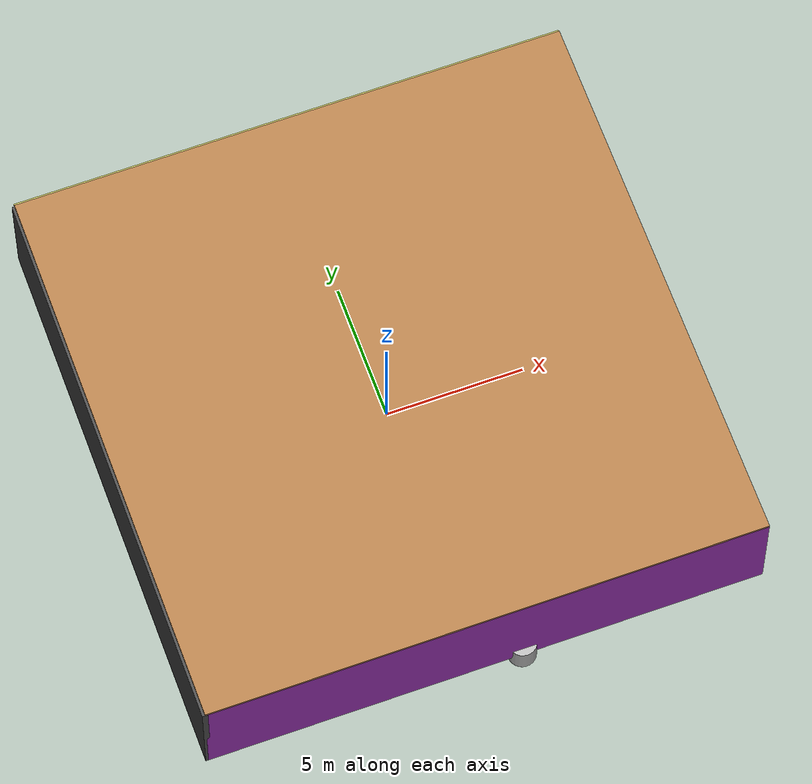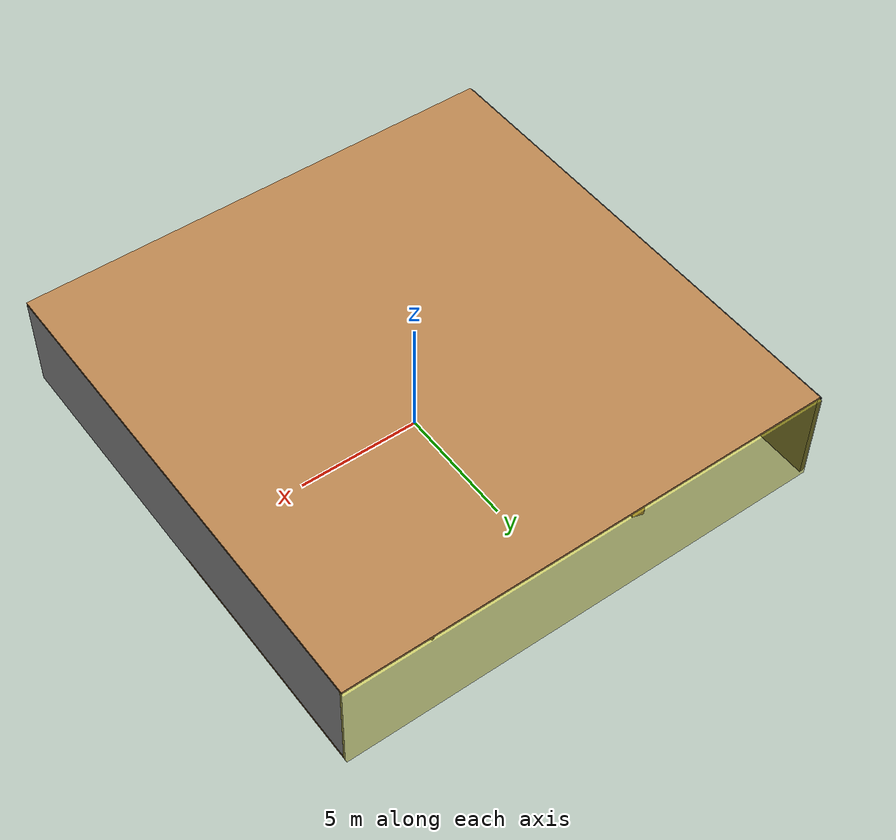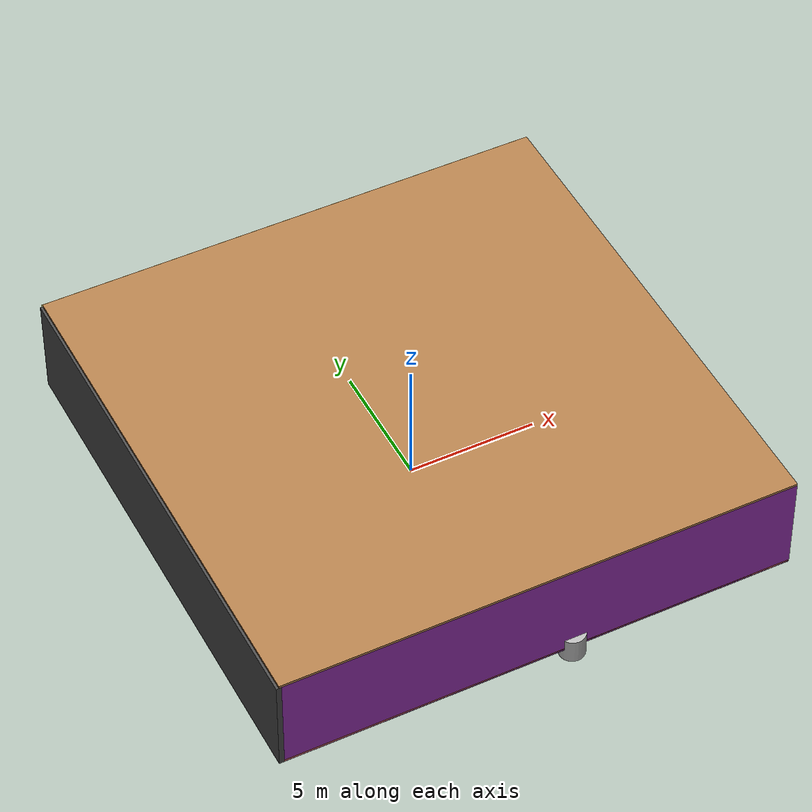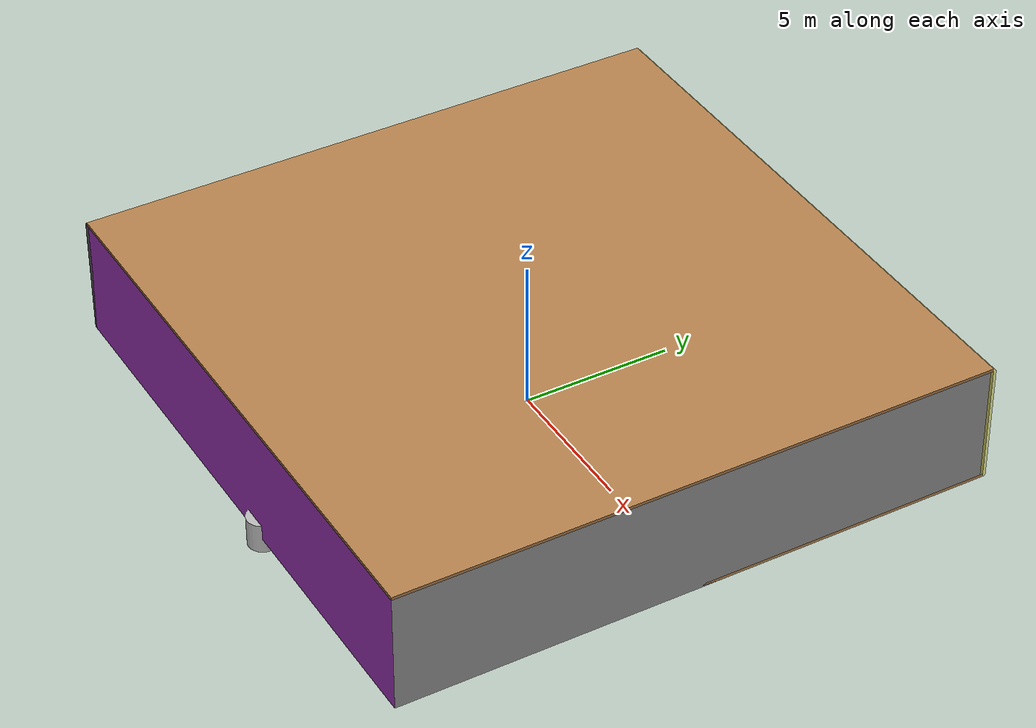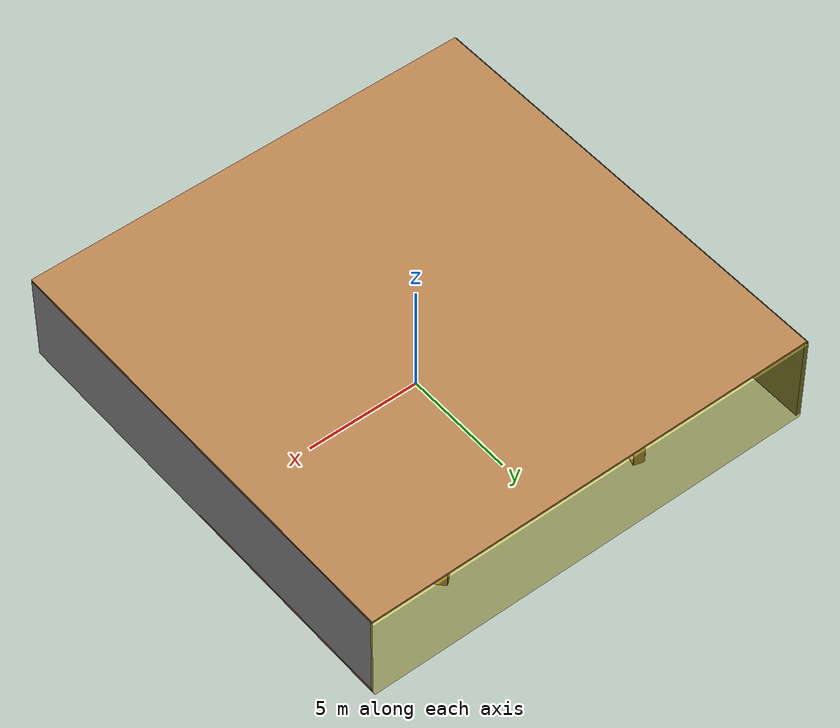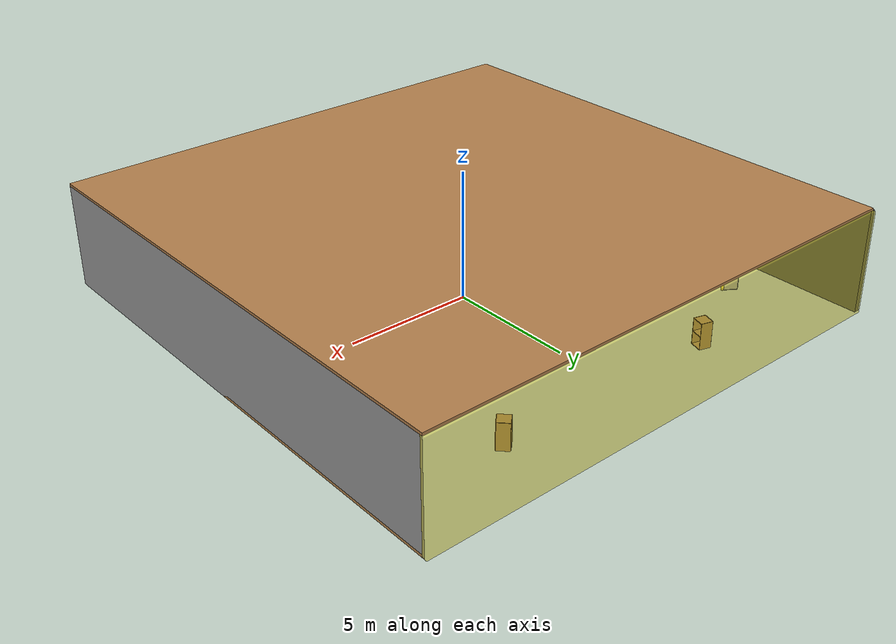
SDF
<sdf version="1.4">
 <world name="default">
  <physics type="ode">
   <max_step_size>0.001</max_step_size>
   <real_time_factor>1</real_time_factor>
   <real_time_update_rate>1000</real_time_update_rate>
   <gravity>0 0 -9.8</gravity>
  </physics>
  <scene><ambient>0.4 0.4 0.4 1</ambient><background>0.7 0.7 0.7 1</background><shadows>1</shadows></scene>
  <model name="Surrounding">
   <static>1</static>
   <link name="Ceiling">
    <collision name="Ceiling_Collision"><geometry><box><size>20 20 0.1</size></box></geometry></collision>
    <visual name="Ceiling_Visual">
     <geometry><box><size>20 20 0.1</size></box></geometry>
     <material>
      <script><uri>file://media/materials/scripts/gazebo.material</uri><name>Gazebo/WoodPallet</name></script>
     </material>
    </visual>
    <pose>0 0 4.05 0 0 0</pose>
   </link>
   <link name="Wall_South">
    <collision name="Wall_South_Collision">
     <geometry><box><size>20 0 4</size></box></geometry>
     <pose>0 0 2 0 -0 0</pose>
    </collision>
    <visual name="Wall_South_Visual">
     <pose>0 0 2 0 -0 0</pose>
     <geometry><box><size>20 0 4</size></box></geometry>
     <material>
      <script><uri>file://media/materials/scripts/gazebo.material</uri><name>Gazebo/PurpleGlow</name></script>
     </material>
    </visual>
    <velocity_decay><linear>0</linear><angular>0</angular></velocity_decay>
    <pose>0 -10 0 0 -0 0</pose>
   </link>
   <link name="Wall_East">
    <collision name="Wall_21_Collision">
     <geometry><box><size>20 0 4</size></box></geometry>
     <pose>0 0 2 0 -0 0</pose>
    </collision>
    <visual name="Wall_21_Visual">
     <pose>0 0 2 0 -0 0</pose>
     <geometry><box><size>20 0 4</size></box></geometry>
     <material>
      <script><uri>file://media/materials/scripts/gazebo.material</uri><name>Gazebo/Grey</name></script>
     </material>
    </visual>
    <velocity_decay><linear>0</linear><angular>0</angular></velocity_decay>
    <pose>10 0 0 0 -0 1.5708</pose>
   </link>
   <link name="Wall_North">
    <collision name="Wall_22_Collision">
     <geometry><box><size>20 0.2 4</size></box></geometry>
     <pose>0 0 2 0 -0 0</pose>
    </collision>
    <visual name="Wall_22_Visual">
     <pose>0 0 2 0 -0 0</pose>
     <geometry><box><size>20 0.2 4</size></box></geometry>
     <material>
      <script>
       <uri>file://media/materials/scripts/gazebo.material</uri>
       <name>Gazebo/YellowTransparent</name>
      </script>
     </material>
    </visual>
    <velocity_decay><linear>0</linear><angular>0</angular></velocity_decay>
    <pose>0 10 0 0 -0 0</pose>
   </link>
   <link name="Wall_West">
    <collision name="Wall_23_Collision">
     <geometry><box><size>20 0.2 4</size></box></geometry>
     <pose>0 0 2 0 -0 0</pose>
    </collision>
    <visual name="Wall_23_Visual">
     <pose>0 0 2 0 -0 0</pose>
     <geometry><box><size>20 0.2 4</size></box></geometry>
     <material>
      <script><uri>file://media/materials/scripts/gazebo.material</uri><name>Gazebo/DarkGrey</name></script>
     </material>
    </visual>
    <velocity_decay><linear>0</linear><angular>0</angular></velocity_decay>
    <pose>-10 0 0 0 0 -1.5708</pose>
   </link>
   <link name="Ground_link">
    <collision name="collision">
     <pose>0 0 .05 0 -0 0</pose>
     <geometry><box><size>20 20 0.1</size></box></geometry>
    </collision>
    <visual name="visual">
     <pose>0 0 .05 0 -0 0</pose>
     <geometry><box><size>20 20 0.1</size></box></geometry>
     <material>
      <script>
       <uri>file://media/materials/scripts/gazebo.material</uri>
       <name>Gazebo/OrangeTransparent</name>
      </script>
     </material>
    </visual>
   </link>
   <static>1</static>
  </model>
  <spherical_coordinates>
   <surface_model>EARTH_WGS84</surface_model>
   <latitude_deg>0</latitude_deg>
   <longitude_deg>0</longitude_deg>
   <elevation>0</elevation>
   <heading_deg>0</heading_deg>
  </spherical_coordinates>
  <light name="lightball_0" type="diffuse">
   <diffuse>0.8 0.8 0.8 1</diffuse>
   <specular>0.2 0.2 0.2 1</specular>
   <attenuation>
    <range>100</range>
    <constant>0.7</constant>
    <linear>0.01</linear>
    <quadratic>0.001</quadratic>
   </attenuation>
   <direction>-0.5 0.1 -0.9</direction>
   <pose>-3.22198082562 0.807625250463 2.12626073691 0 0 0</pose>
  </light>
  <light name="lightball_1" type="diffuse">
   <diffuse>0.8 0.8 0.8 1</diffuse>
   <specular>0.2 0.2 0.2 1</specular>
   <attenuation>
    <range>100</range>
    <constant>0.7</constant>
    <linear>0.01</linear>
    <quadratic>0.001</quadratic>
   </attenuation>
   <direction>-0.5 0.1 -0.9</direction>
   <pose>5.02255194497 5.14310503421 3.42318795772 0 0 0</pose>
  </light>
  <light name="lightball_2" type="diffuse">
   <diffuse>0.8 0.8 0.8 1</diffuse>
   <specular>0.2 0.2 0.2 1</specular>
   <attenuation>
    <range>100</range>
    <constant>0.7</constant>
    <linear>0.01</linear>
    <quadratic>0.001</quadratic>
   </attenuation>
   <direction>-0.5 0.1 -0.9</direction>
   <pose>-0.851359678742 -3.73747975179 2.17158106572 0 0 0</pose>
  </light>
  <light name="lightball_3" type="diffuse">
   <diffuse>0.8 0.8 0.8 1</diffuse>
   <specular>0.2 0.2 0.2 1</specular>
   <attenuation>
    <range>100</range>
    <constant>0.7</constant>
    <linear>0.01</linear>
    <quadratic>0.001</quadratic>
   </attenuation>
   <direction>-0.5 0.1 -0.9</direction>
   <pose>0.784505064724 -2.55046524256 0.547795241639 0 0 0</pose>
  </light>
  <include>
   <uri>model://construction_cone</uri>
   <pose>-7.43886539027 -6.85603632948 0 0 0 0.982295248092</pose>
  </include>
  <include>
   <uri>model://robocup_3Dsim_goal</uri>
   <pose>-8.26541493088 -4.84640472069 0 0 0 2.11806777085</pose>
  </include>
  <include>
   <uri>model://robocup_3Dsim_goal</uri>
   <pose>-8.23157921826 5.01821379461 0 0 0 2.49671483793</pose>
  </include>
  <include><uri>model://cabinet</uri><pose>-4.96185141378 4.06274007876 0 0 0 0.691013227391</pose></include>
  <include><uri>model://cabinet</uri><pose>-3.9652235089 7.84454784081 0 0 0 2.85328947395</pose></include>
  <include>
   <uri>model://textured_shapes</uri>
   <pose>1.39210843955 -8.26693049334 0 0 0 3.10990477028</pose>
  </include>
  <include><uri>model://table</uri><pose>1.56329608616 1.3792027917 0 0 0 0.609968178134</pose></include>
  <include><uri>model://cabinet</uri><pose>3.86621262316 -8.05143731778 0 0 0 2.96298988687</pose></include>
  <include><uri>model://cabinet</uri><pose>5.02831774472 7.6754309098 0 0 0 0.753553845871</pose></include>
  <include><uri>model://table</uri><pose>7.14222387613 -1.67312962148 0 0 0 0.569378472254</pose></include>
 </world>
</sdf>

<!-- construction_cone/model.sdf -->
<sdf version="1.5">
  <model name="Construction Cone">
    <link name="link">
      <collision name="collision">
        <geometry>
          <mesh>
            <scale>10 10 10</scale>
            <uri>file://isr-testbed/construction_cone/meshes/construction_cone.dae</uri>
          </mesh>
        </geometry>
      </collision>
      <visual name="visual">
        <geometry>
          <mesh>
            <scale>10 10 10</scale>
            <uri>file://isr-testbed/construction_cone/meshes/construction_cone.dae</uri>
          </mesh>
        </geometry>
      </visual>
    </link>
  </model>
</sdf>

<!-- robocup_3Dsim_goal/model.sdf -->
<sdf version="1.5">
  <model name="robocup_3d_goal">
    <static>true</static>
    <link name="left_post">
      <pose>0 1.05 0.45 0 0 0</pose>
      <collision name="collision">
        <geometry>
          <cylinder>
            <radius>0.05</radius>
            <length>0.9</length>
          </cylinder>
        </geometry>
      </collision>
      <visual name="visual">
        <geometry>
          <cylinder>
            <radius>0.05</radius>
            <length>0.9</length>
          </cylinder>
        </geometry>
        <material>
          <script>
            <uri>file://media/materials/scripts/gazebo.material</uri>
            <name>Gazebo/ZincYellow</name>
          </script>
        </material>
      </visual>
    </link>
    <link name="left_support_horiz_lower">
      <pose>0.30 1.05 0.01 0 0 0</pose>
      <collision name="collision">
        <geometry>
          <box>
            <size>0.50 0.02 0.02</size>
          </box>
        </geometry>
      </collision>
      <visual name="visual">
        <geometry>
          <box>
            <size>0.50 0.02 0.02</size>
          </box>
        </geometry>
        <material>
          <script>
            <uri>file://media/materials/scripts/gazebo.material</uri>
            <name>Gazebo/White</name>
          </script>
        </material>
      </visual>
    </link>
    <link name="left_support_horiz_upper">
      <pose>0.30 1.05 0.79 0 0 0</pose>
      <collision name="collision">
        <geometry>
          <box>
            <size>0.50 0.02 0.02</size>
          </box>
        </geometry>
      </collision>
      <visual name="visual">
        <geometry>
          <box>
            <size>0.50 0.02 0.02</size>
          </box>
        </geometry>
        <material>
          <script>
            <uri>file://media/materials/scripts/gazebo.material</uri>
            <name>Gazebo/White</name>
          </script>
        </material>
      </visual>
    </link>
    <link name="left_support_vertical">
      <pose>0.56 1.05 0.4 0 1.5708 0</pose>
      <collision name="collision">
        <geometry>
          <box>
            <size>0.80 0.02 0.02</size>
          </box>
        </geometry>
      </collision>
      <visual name="visual">
        <geometry>
          <box>
            <size>0.80 0.02 0.02</size>
          </box>
        </geometry>
        <material>
          <script>
            <uri>file://media/materials/scripts/gazebo.material</uri>
            <name>Gazebo/White</name>
          </script>
        </material>
      </visual>
    </link>
    <link name="right_support_horiz_lower">
      <pose>0.30 -1.05 0.01 0 0 0</pose>
      <collision name="collision">
        <geometry>
          <box>
            <size>0.50 0.02 0.02</size>
          </box>
        </geometry>
      </collision>
      <visual name="visual">
        <geometry>
          <box>
            <size>0.50 0.02 0.02</size>
          </box>
        </geometry>
        <material>
          <script>
            <uri>file://media/materials/scripts/gazebo.material</uri>
            <name>Gazebo/White</name>
          </script>
        </material>
      </visual>
    </link>
    <link name="right_support_horiz_upper">
      <pose>0.30 -1.05 0.79 0 0 0</pose>
      <collision name="collision">
        <geometry>
          <box>
            <size>0.50 0.02 0.02</size>
          </box>
        </geometry>
      </collision>
      <visual name="visual">
        <geometry>
          <box>
            <size>0.50 0.02 0.02</size>
          </box>
        </geometry>
        <material>
          <script>
            <uri>file://media/materials/scripts/gazebo.material</uri>
            <name>Gazebo/White</name>
          </script>
        </material>
      </visual>
    </link>
    <link name="right_support_vertical">
      <pose>0.56 -1.05 0.4 0 1.5708 0</pose>
      <collision name="collision">
        <geometry>
          <box>
            <size>0.80 0.02 0.02</size>
          </box>
        </geometry>
      </collision>
      <visual name="visual">
        <geometry>
          <box>
            <size>0.80 0.02 0.02</size>
          </box>
        </geometry>
        <material>
          <script>
            <uri>file://media/materials/scripts/gazebo.material</uri>
            <name>Gazebo/White</name>
          </script>
        </material>
      </visual>
    </link>
    <link name="center_support_horiz_lower">
      <pose>0.56 0 0.01 0 1.5708 0</pose>
      <collision name="collision">
        <geometry>
          <box>
            <size>0.02 2.08 0.02</size>
          </box>
        </geometry>
      </collision>
      <visual name="visual">
        <geometry>
          <box>
            <size>0.02 2.08 0.02</size>
          </box>
        </geometry>
        <material>
          <script>
            <uri>file://media/materials/scripts/gazebo.material</uri>
            <name>Gazebo/White</name>
          </script>
        </material>
      </visual>
    </link>
    <link name="center_support_horiz_upper">
      <pose>0.56 0 0.79 0 1.5708 0</pose>
      <collision name="collision">
        <geometry>
          <box>
            <size>0.02 2.08 0.02</size>
          </box>
        </geometry>
      </collision>
      <visual name="visual">
        <geometry>
          <box>
            <size>0.02 2.08 0.02</size>
          </box>
        </geometry>
        <material>
          <script>
            <uri>file://media/materials/scripts/gazebo.material</uri>
            <name>Gazebo/White</name>
          </script>
        </material>
      </visual>
    </link>
    <link name="right_post">
      <pose>0 -1.05 0.45 0 0 0</pose>
      <collision name="collision">
        <geometry>
          <cylinder>
            <radius>0.05</radius>
            <length>0.9</length>
          </cylinder>
        </geometry>
      </collision>
      <visual name="visual">
        <geometry>
          <cylinder>
            <radius>0.05</radius>
            <length>0.9</length>
          </cylinder>
        </geometry>
        <material>
          <script>
            <uri>file://media/materials/scripts/gazebo.material</uri>
            <name>Gazebo/ZincYellow</name>
          </script>
        </material>
      </visual>
    </link>
    <link name="crossbar">
      <pose>0 0 0.85 1.57 1.57 0</pose>
      <collision name="collision">
        <geometry>
          <cylinder>
            <radius>0.05</radius>
            <length>2.0</length>
          </cylinder>
        </geometry>
      </collision>
      <visual name="visual">
        <geometry>
          <cylinder>
            <radius>0.05</radius>
            <length>2.0</length>
          </cylinder>
        </geometry>
        <material>
          <script>
            <uri>file://media/materials/scripts/gazebo.material</uri>
            <name>Gazebo/ZincYellow</name>
          </script>
        </material>
      </visual>
    </link>
    <link name="center_net">
      <pose>0.56 0 0.40 0 0 0</pose>
      <collision name="collision">
        <geometry>
          <box>
            <size>0.01 2.1 0.80</size>
          </box>
        </geometry>
      </collision>
      <visual name="visual">
        <geometry>
          <box>
            <size>0.01 2.1 0.80</size>
          </box>
        </geometry>
        <material>
          <script>
            <uri>model://../model_source/models/robocup09_spl_field/materials/scripts/</uri>
            <uri>model://../model_source/models/robocup09_spl_field/materials/textures/</uri>
            <name>RoboCup/Net</name>
          </script>
        </material>
      </visual>
    </link>
    <link name="left_net">
      <pose>0.30 1.05 0.40 0 0 0</pose>
      <collision name="collision">
        <geometry>
          <box>
            <size>0.50 0.01 0.76</size>
          </box>
        </geometry>
      </collision>
      <visual name="visual">
        <geometry>
          <box>
            <size>0.50 0.01 0.76</size>
          </box>
        </geometry>
        <material>
          <script>
            <uri>model://../model_source/models/robocup09_spl_field/materials/scripts/</uri>
            <uri>model://../model_source/models/robocup09_spl_field/materials/textures/</uri>
            <name>RoboCup/Net</name>
          </script>
        </material>
      </visual>
    </link>
    <link name="right_net">
      <pose>0.30 -1.05 0.40 0 0 0</pose>
      <collision name="collision">
        <geometry>
          <box>
            <size>0.50 0.01 0.76</size>
          </box>
        </geometry>
      </collision>
      <visual name="visual">
        <geometry>
          <box>
            <size>0.50 0.01 0.76</size>
          </box>
        </geometry>
        <material>
          <script>
            <uri>model://../model_source/models/robocup09_spl_field/materials/scripts/</uri>
            <uri>model://../model_source/models/robocup09_spl_field/materials/textures/</uri>
            <name>RoboCup/Net</name>
          </script>
        </material>
      </visual>
    </link>
  </model>
</sdf>

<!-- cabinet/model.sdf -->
<sdf version="1.5">
  <model name="cabinet">
    <static>true</static>
    <link name="cabinet_bottom_plate">
      <inertial>
        <pose>0 0 -1 0 0 0</pose>
        <inertia>
          <ixx>2.050000</ixx>
          <ixy>0</ixy>
          <ixz>0</ixz>
          <iyy>2.050000</iyy>
          <iyz>0</iyz>
          <izz>2.050000</izz>
        </inertia>
        <mass>25.000000</mass>
      </inertial>
      <collision name="cabinet_bottom_plate_geom">
        <pose>0 0 0.010000 0 0 0</pose>
        <geometry>
          <box>
            <size>0.450000 0.450000 0.020000</size>
          </box>
        </geometry>
      </collision>
      <visual name="cabinet_bottom_plate_geom_visual">
        <pose>0 0 0.010000 0 0 0</pose>
        <geometry>
          <box>
            <size>0.450000 0.450000 0.020000</size>
          </box>
        </geometry>
        <material>
          <script>
            <uri>model://media/materials/scripts/gazebo.material</uri>
            <name>Gazebo/Wood</name>
          </script>
        </material>
      </visual>
      <collision name="cabinet_bottom_plate_geom_cabinet_back_plate">
        <pose>0.235000 0 0.510000 0 0 0</pose>
        <geometry>
          <box>
            <size>0.020000 0.450000 1.020000</size>
          </box>
        </geometry>
      </collision>
      <visual name="cabinet_bottom_plate_geom_cabinet_back_plate_visual">
        <pose>0.235000 0 0.510000 0 0 0</pose>
        <geometry>
          <box>
            <size>0.020000 0.450000 1.020000</size>
          </box>
        </geometry>
        <material>
          <script>
            <uri>model://media/materials/scripts/gazebo.material</uri>
            <name>Gazebo/Wood</name>
          </script>
        </material>
      </visual>
      <collision name="cabinet_bottom_plate_geom_cabinet_left_plate">
        <pose>0 0.235000 0.510000 0 0 0</pose>
        <geometry>
          <box>
            <size>0.450000 0.020000 1.020000</size>
          </box>
        </geometry>
      </collision>
      <visual name="cabinet_bottom_plate_geom_cabinet_left_plate_visual">
        <pose>0 0.235000 0.510000 0 0 0</pose>
        <geometry>
          <box>
            <size>0.450000 0.020000 1.020000</size>
          </box>
        </geometry>
        <material>
          <script>
            <uri>model://media/materials/scripts/gazebo.material</uri>
            <name>Gazebo/Wood</name>
          </script>
        </material>
      </visual>
      <collision name="cabinet_bottom_plate_geom_cabinet_middle_plate">
        <pose>0 0 0.510000 0 0 0</pose>
        <geometry>
          <box>
            <size>0.450000 0.450000 0.020000</size>
          </box>
        </geometry>
      </collision>
      <visual name="cabinet_bottom_plate_geom_cabinet_middle_plate_visual">
        <pose>0 0 0.510000 0 0 0</pose>
        <geometry>
          <box>
            <size>0.450000 0.450000 0.020000</size>
          </box>
        </geometry>
        <material>
          <script>
            <uri>model://media/materials/scripts/gazebo.material</uri>
            <name>Gazebo/Wood</name>
          </script>
        </material>
      </visual>
      <collision name="cabinet_bottom_plate_geom_cabinet_right_plate">
        <pose>0 -0.235000 0.510000 0 0 0</pose>
        <geometry>
          <box>
            <size>0.450000 0.020000 1.020000</size>
          </box>
        </geometry>
      </collision>
      <visual name="cabinet_bottom_plate_geom_cabinet_right_plate_visual">
        <pose>0 -0.235000 0.510000 0 0 0</pose>
        <geometry>
          <box>
            <size>0.450000 0.020000 1.020000</size>
          </box>
        </geometry>
        <material>
          <script>
            <uri>model://media/materials/scripts/gazebo.material</uri>
            <name>Gazebo/Wood</name>
          </script>
        </material>
      </visual>
      <collision name="cabinet_bottom_plate_geom_cabinet_top_plate">
        <pose>0 0 1.010000 0 0 0</pose>
        <geometry>
          <box>
            <size>0.450000 0.450000 0.020000</size>
          </box>
        </geometry>
      </collision>
      <visual name="cabinet_bottom_plate_geom_cabinet_top_plate_visual">
        <pose>0 0 1.010000 0 0 0</pose>
        <geometry>
          <box>
            <size>0.450000 0.450000 0.020000</size>
          </box>
        </geometry>
        <material>
          <script>
            <uri>model://media/materials/scripts/gazebo.material</uri>
            <name>Gazebo/Wood</name>
          </script>
        </material>
      </visual>
    </link>
  </model>
</sdf>

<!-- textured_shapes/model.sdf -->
<sdf version="1.6">
  <model name="textured_shapes">
    <pose>0 0 0.5 0 0 0</pose>
    <link name="box">
      <pose>0 -1.5 0 0 0 0</pose>
      <collision name="collision">
        <geometry>
          <box>
            <size>1 1 1</size>
          </box>
        </geometry>
      </collision>
      <visual name="visual">
        <geometry>
          <box>
            <size>1 1 1</size>
          </box>
        </geometry>
        <material>
          <script>
            <uri>model://../model_source/models/textured_shapes/materials/scripts</uri>
            <uri>model://../model_source/models/textured_shapes/materials/textures</uri>
            <name>TexturedShape/Squares</name>
          </script>
        </material>
      </visual>
    </link>
    <link name="sphere">
      <collision name="collision">
        <geometry>
          <sphere>
            <radius>0.5</radius>
          </sphere>
        </geometry>
      </collision>
      <visual name="visual">
        <geometry>
          <sphere>
            <radius>0.5</radius>
          </sphere>
        </geometry>
        <material>
          <script>
            <uri>model://../model_source/models/textured_shapes/materials/scripts</uri>
            <uri>model://../model_source/models/textured_shapes/materials/textures</uri>
            <name>TexturedShape/Squares</name>
          </script>
        </material>
      </visual>
    </link>
    <link name="cylinder">
      <pose>0 1.5 0 0 0 0</pose>
      <collision name="collision">
        <geometry>
          <cylinder>
            <radius>0.5</radius>
            <length>1</length>
          </cylinder>
        </geometry>
      </collision>
      <visual name="visual">
        <geometry>
          <cylinder>
            <radius>0.5</radius>
            <length>1</length>
          </cylinder>
        </geometry>
        <material>
          <script>
            <uri>model://../model_source/models/textured_shapes/materials/scripts</uri>
            <uri>model://../model_source/models/textured_shapes/materials/textures</uri>
            <name>TexturedShape/Squares</name>
          </script>
        </material>
      </visual>
    </link>
  </model>
</sdf>

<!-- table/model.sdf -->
<sdf version="1.5">
  <model name="table">
    <static>true</static>
    <link name="link">
      <collision name="surface">
        <pose>0 0 1.0 0 0 0</pose>
        <geometry>
          <box>
            <size>1.5 0.8 0.03</size>
          </box>
        </geometry>
        <surface>
          <friction>
            <ode>
              <mu>0.6</mu>
              <mu2>0.6</mu2>
            </ode>
          </friction>
        </surface>
      </collision>
      <visual name="visual1">
        <pose>0 0 1.0 0 0 0</pose>
        <geometry>
          <box>
            <size>1.5 0.8 0.03</size>
          </box>
        </geometry>
        <material>
          <script>
            <uri>model://media/materials/scripts/gazebo.material</uri>
            <name>Gazebo/Wood</name>
          </script>
        </material>
      </visual>
      <collision name="front_left_leg">
        <pose>0.68 0.38 0.5 0 0 0</pose>
        <geometry>
          <cylinder>
            <radius>0.02</radius>
            <length>1.0</length>
          </cylinder>
        </geometry>
      </collision>
      <visual name="front_left_leg">
        <pose>0.68 0.38 0.5 0 0 0</pose>
        <geometry>
          <cylinder>
            <radius>0.02</radius>
            <length>1.0</length>
          </cylinder>
        </geometry>
        <material>
          <script>
            <uri>model://media/materials/scripts/gazebo.material</uri>
            <name>Gazebo/Grey</name>
          </script>
        </material>
      </visual>
      <collision name="front_right_leg">
        <pose>0.68 -0.38 0.5 0 0 0</pose>
        <geometry>
          <cylinder>
            <radius>0.02</radius>
            <length>1.0</length>
          </cylinder>
        </geometry>
      </collision>
      <visual name="front_right_leg">
        <pose>0.68 -0.38 0.5 0 0 0</pose>
        <geometry>
          <cylinder>
            <radius>0.02</radius>
            <length>1.0</length>
          </cylinder>
        </geometry>
        <material>
          <script>
            <uri>model://media/materials/scripts/gazebo.material</uri>
            <name>Gazebo/Grey</name>
          </script>
        </material>
      </visual>
      <collision name="back_right_leg">
        <pose>-0.68 -0.38 0.5 0 0 0</pose>
        <geometry>
          <cylinder>
            <radius>0.02</radius>
            <length>1.0</length>
          </cylinder>
        </geometry>
      </collision>
      <visual name="back_right_leg">
        <pose>-0.68 -0.38 0.5 0 0 0</pose>
        <geometry>
          <cylinder>
            <radius>0.02</radius>
            <length>1.0</length>
          </cylinder>
        </geometry>
        <material>
          <script>
            <uri>model://media/materials/scripts/gazebo.material</uri>
            <name>Gazebo/Grey</name>
          </script>
        </material>
      </visual>
      <collision name="back_left_leg">
        <pose>-0.68 0.38 0.5 0 0 0</pose>
        <geometry>
          <cylinder>
            <radius>0.02</radius>
            <length>1.0</length>
          </cylinder>
        </geometry>
      </collision>
      <visual name="back_left_leg">
        <pose>-0.68 0.38 0.5 0 0 0</pose>
        <geometry>
          <cylinder>
            <radius>0.02</radius>
            <length>1.0</length>
          </cylinder>
        </geometry>
        <material>
          <script>
            <uri>model://media/materials/scripts/gazebo.material</uri>
            <name>Gazebo/Grey</name>
          </script>
        </material>
      </visual>
    </link>
  </model>
</sdf>
